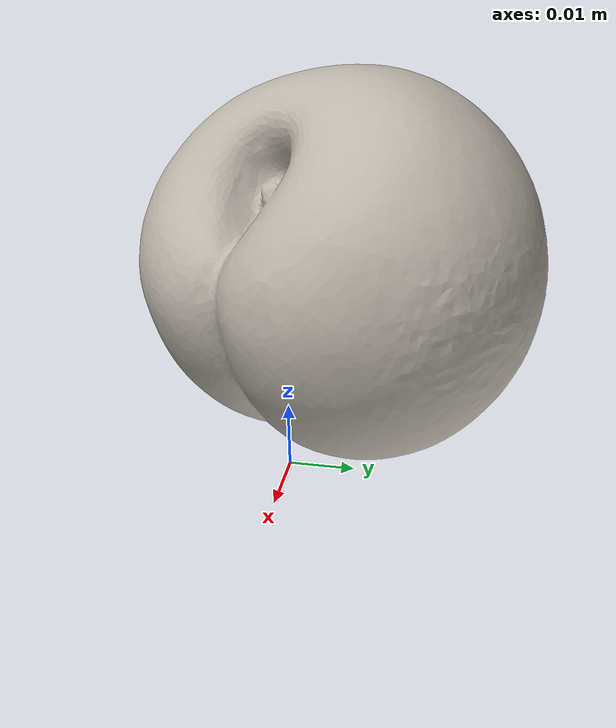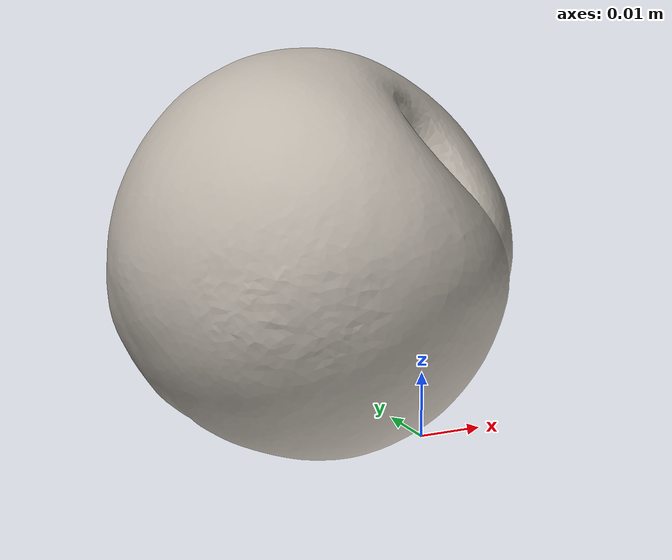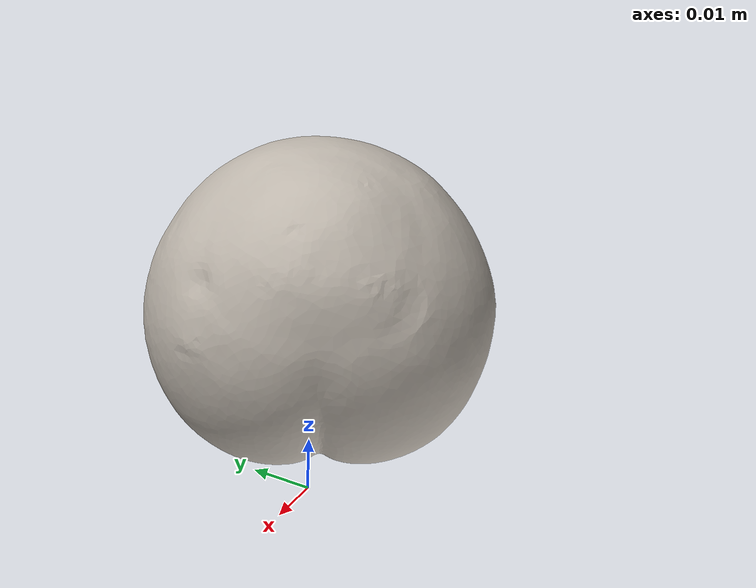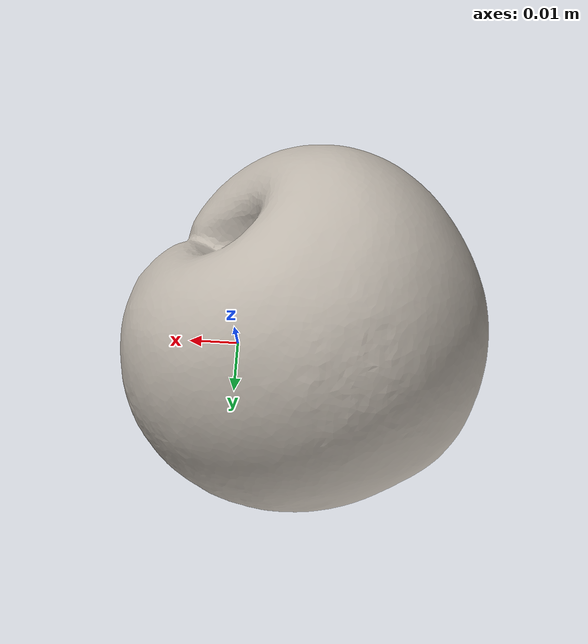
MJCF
<mujoco model="peach">
  <compiler angle="radian" meshdir="assets" texturedir="assets"/>
    <default>
        <default class="ycb_col">
            <geom contype="1" conaffinity="1" group="3" rgba=".4 .5 .6 1"/>
        </default>
        <default class="ycb_viz">
            <geom contype="0" conaffinity="0" type="mesh" mass="0"/>
        </default>
    </default>
  <asset>
    <texture type="2d" name="peach_tex" file="texture_map.png"/>
    <material name="peach_mat" texture="peach_tex" specular="0.5" shininess="0.5"/>
    <mesh file="textured.obj" name="peach"/>
    <mesh file="textured_collision_0.obj" name="peach_collision_0"/>
  </asset>
  <worldbody>
      <geom class="ycb_viz" material="peach_mat" mesh="peach"/>
      <geom class="ycb_col" mesh="peach_collision_0" conaffinity="1" condim="4" friction="0.1 0.1 0.1" mass="0.03300000000000001" rgba="1 1 1 1" solimp="0.99 0.99 0.01" solref=".001 0.1" type="mesh" group="3"/>
  </worldbody>
</mujoco>
